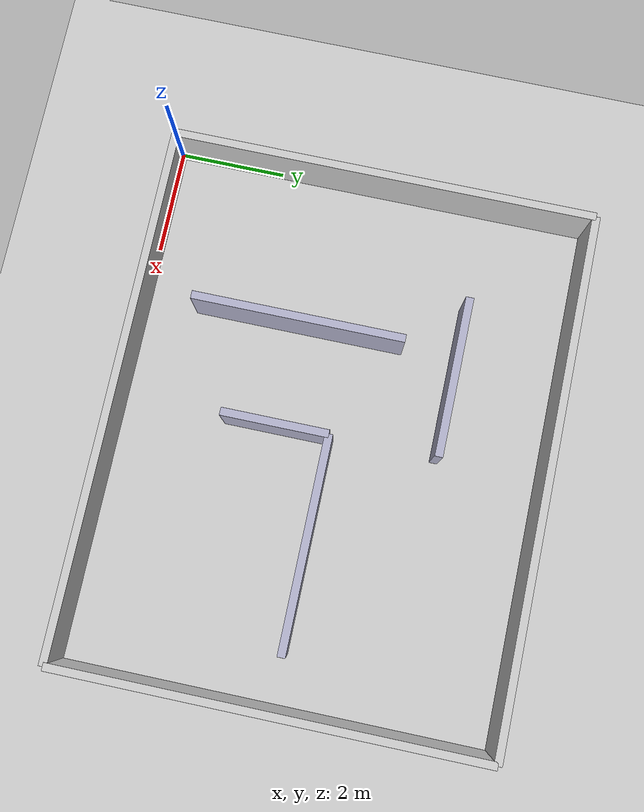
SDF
<?xml version="1.0" ?>
<sdf version="1.9">
 <world name="zmr_test_world">

  <!-- ── PHYSICS ENGINE ─────────────────────────────────────────── -->
  <!-- Controls simulation speed and accuracy -->
  <physics name="1ms" type="ignored">
   <max_step_size>0.001</max_step_size>
   <real_time_factor>1.0</real_time_factor>
  </physics>

  <!-- Gazebo Sim requires its systems to be declared explicitly. Without
       these the world loads but nothing steps, no sensor renders and no
       model command is accepted. -->
  <plugin filename="gz-sim-physics-system"
          name="gz::sim::systems::Physics"/>
  <plugin filename="gz-sim-user-commands-system"
          name="gz::sim::systems::UserCommands"/>
  <plugin filename="gz-sim-scene-broadcaster-system"
          name="gz::sim::systems::SceneBroadcaster"/>
  <plugin filename="gz-sim-sensors-system"
          name="gz::sim::systems::Sensors">
   <render_engine>ogre2</render_engine>
  </plugin>

  <!-- ── LIGHTING ───────────────────────────────────────────────── -->
  <light type="directional" name="sun">
   <cast_shadows>true</cast_shadows>
   <pose>0 0 10 0 0 0</pose>
   <diffuse>0.8 0.8 0.8 1</diffuse>
   <specular>0.2 0.2 0.2 1</specular>
   <direction>-0.5 0.1 -0.9</direction>
  </light>

  <!-- ── GROUND PLANE ───────────────────────────────────────────── -->
  <model name="ground_plane">
   <static>true</static>
   <link name="link">
    <collision name="collision">
     <geometry><plane><normal>0 0 1</normal><size>100 100</size></plane></geometry>
    </collision>
    <visual name="visual">
     <geometry><plane><normal>0 0 1</normal><size>100 100</size></plane></geometry>
     <material>
      <ambient>0.8 0.8 0.8 1</ambient>
      <diffuse>0.8 0.8 0.8 1</diffuse>
     </material>
    </visual>
   </link>
  </model>

  <!-- ── WALLS ──────────────────────────────────────────────────── -->

  <!-- Outer wall — North (top) -->
  <model name="wall_north">
   <static>true</static>
   <pose>5 8 0.5 0 0 0</pose>
   <link name="link">
    <collision name="collision">
     <geometry><box><size>10 0.15 1.0</size></box></geometry>
    </collision>
    <visual name="visual">
     <geometry><box><size>10 0.15 1.0</size></box></geometry>
     <material>
      <ambient>0.7 0.7 0.7 1</ambient>
      <diffuse>0.8 0.8 0.8 1</diffuse>
     </material>
    </visual>
   </link>
  </model>

  <!-- Outer wall — South (bottom) -->
  <model name="wall_south">
   <static>true</static>
   <pose>5 0 0.5 0 0 0</pose>
   <link name="link">
    <collision name="collision">
     <geometry><box><size>10 0.15 1.0</size></box></geometry>
    </collision>
    <visual name="visual">
     <geometry><box><size>10 0.15 1.0</size></box></geometry>
     <material>
      <ambient>0.7 0.7 0.7 1</ambient>
      <diffuse>0.8 0.8 0.8 1</diffuse>
     </material>
    </visual>
   </link>
  </model>

  <!-- Outer wall — West (left) -->
  <model name="wall_west">
   <static>true</static>
   <pose>0 4 0.5 0 0 0</pose>
   <link name="link">
    <collision name="collision">
     <geometry><box><size>0.15 8 1.0</size></box></geometry>
    </collision>
    <visual name="visual">
     <geometry><box><size>0.15 8 1.0</size></box></geometry>
     <material>
      <ambient>0.7 0.7 0.7 1</ambient>
      <diffuse>0.8 0.8 0.8 1</diffuse>
     </material>
    </visual>
   </link>
  </model>

  <!-- Outer wall — East (right) -->
  <model name="wall_east">
   <static>true</static>
   <pose>10 4 0.5 0 0 0</pose>
   <link name="link">
    <collision name="collision">
     <geometry><box><size>0.15 8 1.0</size></box></geometry>
    </collision>
    <visual name="visual">
     <geometry><box><size>0.15 8 1.0</size></box></geometry>
     <material>
      <ambient>0.7 0.7 0.7 1</ambient>
      <diffuse>0.8 0.8 0.8 1</diffuse>
     </material>
    </visual>
   </link>
  </model>

  <!-- Interior wall — Vertical divider (creates hallway) -->
  <model name="wall_interior_v1">
   <static>true</static>
   <pose>3 3 0.5 0 0 0</pose>
   <link name="link">
    <collision name="collision">
     <geometry><box><size>0.15 4 1.0</size></box></geometry>
    </collision>
    <visual name="visual">
     <geometry><box><size>0.15 4 1.0</size></box></geometry>
     <material>
      <ambient>0.6 0.6 0.7 1</ambient>
      <diffuse>0.7 0.7 0.8 1</diffuse>
     </material>
    </visual>
   </link>
  </model>

  <!-- Interior wall — Horizontal (Room1 top) -->
  <model name="wall_interior_h1">
   <static>true</static>
   <pose>3.5 6 0.5 0 0 0</pose>
   <link name="link">
    <collision name="collision">
     <geometry><box><size>3 0.15 1.0</size></box></geometry>
    </collision>
    <visual name="visual">
     <geometry><box><size>3 0.15 1.0</size></box></geometry>
     <material>
      <ambient>0.6 0.6 0.7 1</ambient>
      <diffuse>0.7 0.7 0.8 1</diffuse>
     </material>
    </visual>
   </link>
  </model>

  <!-- Interior wall — Horizontal (Room3 divider) -->
  <model name="wall_interior_h2">
   <static>true</static>
   <pose>7 4 0.5 0 0 0</pose>
   <link name="link">
    <collision name="collision">
     <geometry><box><size>4 0.15 1.0</size></box></geometry>
    </collision>
    <visual name="visual">
     <geometry><box><size>4 0.15 1.0</size></box></geometry>
     <material>
      <ambient>0.6 0.6 0.7 1</ambient>
      <diffuse>0.7 0.7 0.8 1</diffuse>
     </material>
    </visual>
   </link>
  </model>

  <!-- Interior wall — Short vertical (between rooms) -->
  <model name="wall_interior_v2">
   <static>true</static>
   <pose>5 3 0.5 0 0 0</pose>
   <link name="link">
    <collision name="collision">
     <geometry><box><size>0.15 2 1.0</size></box></geometry>
    </collision>
    <visual name="visual">
     <geometry><box><size>0.15 2 1.0</size></box></geometry>
     <material>
      <ambient>0.6 0.6 0.7 1</ambient>
      <diffuse>0.7 0.7 0.8 1</diffuse>
     </material>
    </visual>
   </link>
  </model>

 </world>
</sdf>
